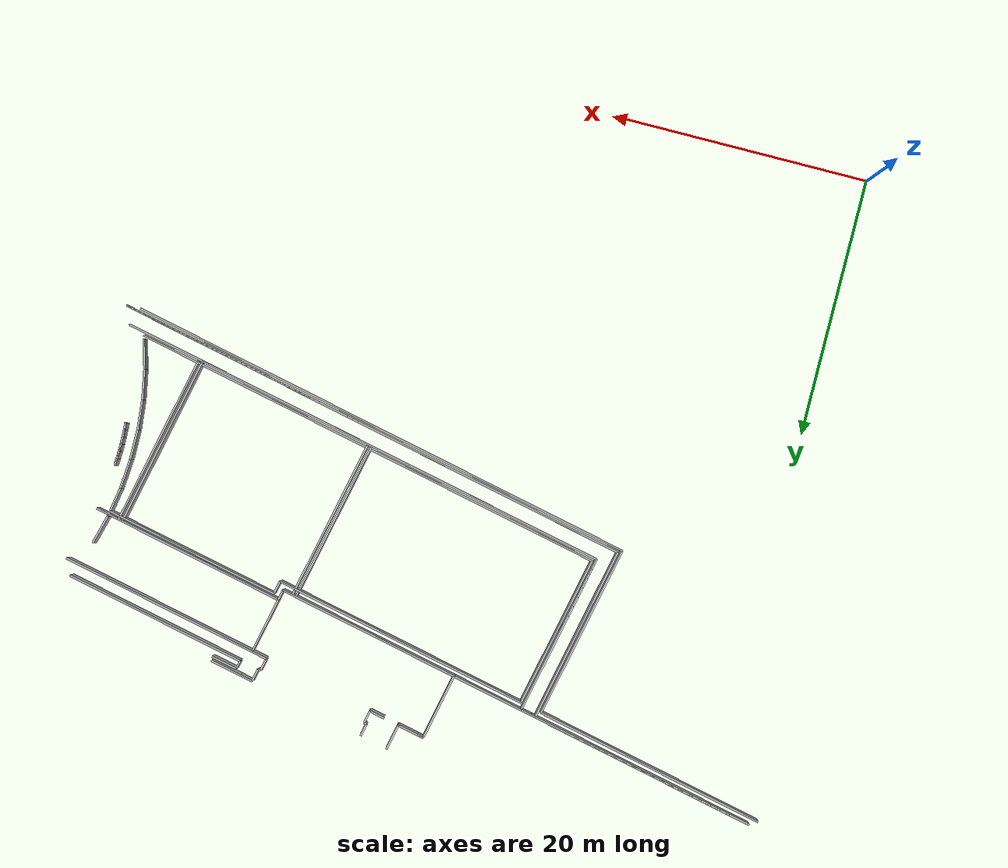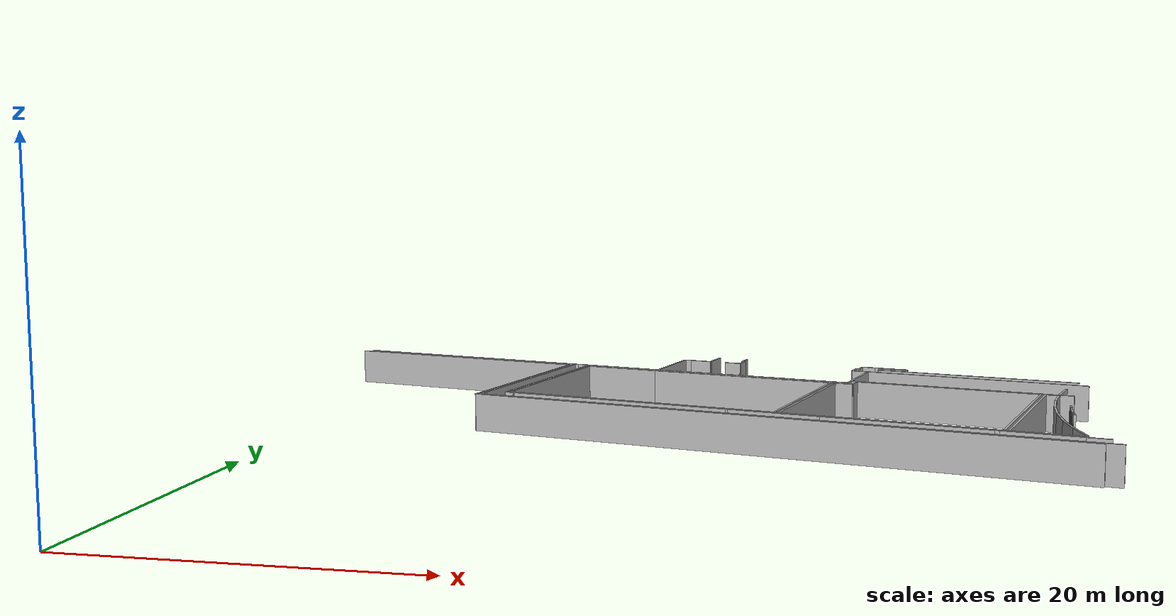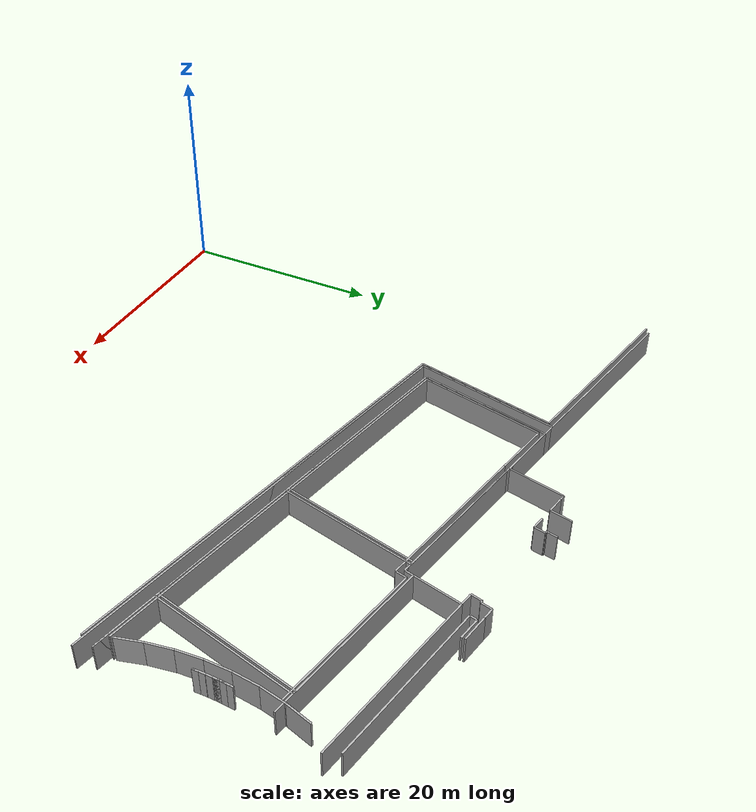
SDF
<?xml version="1.0" ?>
<sdf version="1.6">
  <model name="sps_2204">
    <pose frame="">0 0 0 0 -0 0</pose>
    <static>1</static>
    <self_collide>0</self_collide>
    <allow_auto_disable>0</allow_auto_disable>
    <link name="Wall214">
      <kinematic>0</kinematic>
      <gravity>1</gravity>
      <self_collide>0</self_collide>
      <collision name="collision">
        <geometry>
          <box>
            <size>1.20023 0.15 2.5</size>
          </box>
        </geometry>
        <pose frame="">0 0 0 0 -0 0</pose>
      </collision>
      <visual name="visual">
        <geometry>
          <box>
            <size>1.20023 0.15 2.5</size>
          </box>
        </geometry>
        <pose frame="">0 0 0 0 -0 0</pose>
        <cast_shadows>1</cast_shadows>
        <transparency>0.0</transparency>
      </visual>
      <pose frame="">26.0478 48.5725 1.25 0 -0 2.92734</pose>
    </link>
    <link name="Wall218">
      <kinematic>0</kinematic>
      <gravity>1</gravity>
      <self_collide>0</self_collide>
      <collision name="collision">
        <geometry>
          <box>
            <size>0.999999 0.15 2.5</size>
          </box>
        </geometry>
        <pose frame="">0 0 0 0 -0 0</pose>
      </collision>
      <visual name="visual">
        <geometry>
          <box>
            <size>0.999999 0.15 2.5</size>
          </box>
        </geometry>
        <pose frame="">0 0 0 0 -0 0</pose>
        <cast_shadows>1</cast_shadows>
        <transparency>0.0</transparency>
      </visual>
      <pose frame="">35.3382 47.0623 1.25 0 -0 1.35701</pose>
    </link>
    <link name="Wall219">
      <kinematic>0</kinematic>
      <gravity>1</gravity>
      <self_collide>0</self_collide>
      <collision name="collision">
        <geometry>
          <box>
            <size>0.9999 0.15 2.5</size>
          </box>
        </geometry>
        <pose frame="">0 0 0 0 -0 0</pose>
      </collision>
      <visual name="visual">
        <geometry>
          <box>
            <size>0.9999 0.15 2.5</size>
          </box>
        </geometry>
        <pose frame="">0 0 0 0 -0 0</pose>
        <cast_shadows>1</cast_shadows>
        <transparency>0.0</transparency>
      </visual>
      <pose frame="">35.7465 47.9971 1.25 0 -0 1.35718</pose>
    </link>
    <link name="Wall220">
      <kinematic>0</kinematic>
      <gravity>1</gravity>
      <self_collide>0</self_collide>
      <collision name="collision">
        <geometry>
          <box>
            <size>0.99996 0.15 2.5</size>
          </box>
        </geometry>
        <pose frame="">0 0 0 0 -0 0</pose>
      </collision>
      <visual name="visual">
        <geometry>
          <box>
            <size>0.99996 0.15 2.5</size>
          </box>
        </geometry>
        <pose frame="">0 0 0 0 -0 0</pose>
        <cast_shadows>1</cast_shadows>
        <transparency>0.0</transparency>
      </visual>
      <pose frame="">36.3411 48.3797 1.25 0 0 -0.213604</pose>
    </link>
    <link name="Wall221">
      <kinematic>0</kinematic>
      <gravity>1</gravity>
      <self_collide>0</self_collide>
      <collision name="collision">
        <geometry>
          <box>
            <size>16.7002 0.15 2.5</size>
          </box>
        </geometry>
        <pose frame="">0 0 0 0 -0 0</pose>
      </collision>
      <visual name="visual">
        <geometry>
          <box>
            <size>16.7002 0.15 2.5</size>
          </box>
        </geometry>
        <pose frame="">0 0 0 0 -0 0</pose>
        <cast_shadows>1</cast_shadows>
        <transparency>0.0</transparency>
      </visual>
      <pose frame="">36.8682 27.8488 1.25 0 0 -0.214071</pose>
    </link>
    <link name="Wall222">
      <kinematic>0</kinematic>
      <gravity>1</gravity>
      <self_collide>0</self_collide>
      <collision name="collision">
        <geometry>
          <box>
            <size>41.6744 0.15 2.5</size>
          </box>
        </geometry>
        <pose frame="">0 0 0 0 -0 0</pose>
      </collision>
      <visual name="visual">
        <geometry>
          <box>
            <size>41.6744 0.15 2.5</size>
          </box>
        </geometry>
        <pose frame="">0 0 0 0 -0 0</pose>
        <cast_shadows>1</cast_shadows>
        <transparency>0.0</transparency>
      </visual>
      <pose frame="">31.8077 27.7209 1.25 0 0 -0.214069</pose>
    </link>
    <link name="Wall529">
      <kinematic>0</kinematic>
      <gravity>1</gravity>
      <self_collide>0</self_collide>
      <collision name="collision">
        <geometry>
          <box>
            <size>18.1208 0.15 2.5</size>
          </box>
        </geometry>
        <pose frame="">0 0 0 0 -0 0</pose>
      </collision>
      <visual name="visual">
        <geometry>
          <box>
            <size>18.1208 0.15 2.5</size>
          </box>
        </geometry>
        <pose frame="">0 0 0 0 -0 0</pose>
        <cast_shadows>1</cast_shadows>
        <transparency>0.0</transparency>
      </visual>
      <pose frame="">5.55904 47.7055 1.25 0 -0 2.92734</pose>
    </link>
    <link name="Wall531">
      <kinematic>0</kinematic>
      <gravity>1</gravity>
      <self_collide>0</self_collide>
      <collision name="collision">
        <geometry>
          <box>
            <size>0.200761 0.15 2.5</size>
          </box>
        </geometry>
        <pose frame="">0 0 0 0 -0 0</pose>
      </collision>
      <visual name="visual">
        <geometry>
          <box>
            <size>0.200761 0.15 2.5</size>
          </box>
        </geometry>
        <pose frame="">0 0 0 0 -0 0</pose>
        <cast_shadows>1</cast_shadows>
        <transparency>0.0</transparency>
      </visual>
      <pose frame="">35.5424 47.5297 1.25 0 0 -0.212898</pose>
    </link>
    <link name="Wall532">
      <kinematic>0</kinematic>
      <gravity>1</gravity>
      <self_collide>0</self_collide>
      <collision name="collision">
        <geometry>
          <box>
            <size>13.8832 0.15 2.5</size>
          </box>
        </geometry>
        <pose frame="">0 0 0 0 -0 0</pose>
      </collision>
      <visual name="visual">
        <geometry>
          <box>
            <size>13.8832 0.15 2.5</size>
          </box>
        </geometry>
        <pose frame="">0 0 0 0 -0 0</pose>
        <cast_shadows>1</cast_shadows>
        <transparency>0.0</transparency>
      </visual>
      <pose frame="">42.6867 40.1925 1.25 0 -0 2.92736</pose>
    </link>
    <link name="Wall806">
      <kinematic>0</kinematic>
      <gravity>1</gravity>
      <self_collide>0</self_collide>
      <collision name="collision">
        <geometry>
          <box>
            <size>18.371 0.15 2.5</size>
          </box>
        </geometry>
        <pose frame="">0 0 0 0 -0 0</pose>
      </collision>
      <visual name="visual">
        <geometry>
          <box>
            <size>18.371 0.15 2.5</size>
          </box>
        </geometry>
        <pose frame="">0 0 0 0 -0 0</pose>
        <cast_shadows>1</cast_shadows>
        <transparency>0.0</transparency>
      </visual>
      <pose frame="">5.08617 47.2969 1.25 0 -0 2.92734</pose>
    </link>
    <link name="Wall807">
      <kinematic>0</kinematic>
      <gravity>1</gravity>
      <self_collide>0</self_collide>
      <collision name="collision">
        <geometry>
          <box>
            <size>13.9506 0.15 2.5</size>
          </box>
        </geometry>
        <pose frame="">0 0 0 0 -0 0</pose>
      </collision>
      <visual name="visual">
        <geometry>
          <box>
            <size>13.9506 0.15 2.5</size>
          </box>
        </geometry>
        <pose frame="">0 0 0 0 -0 0</pose>
        <cast_shadows>1</cast_shadows>
        <transparency>0.0</transparency>
      </visual>
      <pose frame="">12.9292 38.9633 1.25 0 -0 1.35654</pose>
    </link>
    <link name="Wall808">
      <kinematic>0</kinematic>
      <gravity>1</gravity>
      <self_collide>0</self_collide>
      <collision name="collision">
        <geometry>
          <box>
            <size>12.0006 0.15 2.5</size>
          </box>
        </geometry>
        <pose frame="">0 0 0 0 -0 0</pose>
      </collision>
      <visual name="visual">
        <geometry>
          <box>
            <size>12.0006 0.15 2.5</size>
          </box>
        </geometry>
        <pose frame="">0 0 0 0 -0 0</pose>
        <cast_shadows>1</cast_shadows>
        <transparency>0.0</transparency>
      </visual>
      <pose frame="">14.447 39.1194 1.25 0 -0 1.35654</pose>
    </link>
    <link name="Wall813">
      <kinematic>0</kinematic>
      <gravity>1</gravity>
      <self_collide>0</self_collide>
      <collision name="collision">
        <geometry>
          <box>
            <size>15.9048 0.15 2.5</size>
          </box>
        </geometry>
        <pose frame="">0 0 0 0 -0 0</pose>
      </collision>
      <visual name="visual">
        <geometry>
          <box>
            <size>15.9048 0.15 2.5</size>
          </box>
        </geometry>
        <pose frame="">0 0 0 0 -0 0</pose>
        <cast_shadows>1</cast_shadows>
        <transparency>0.0</transparency>
      </visual>
      <pose frame="">20.6448 31.3757 1.25 0 0 -0.214069</pose>
    </link>
    <link name="Wall814">
      <kinematic>0</kinematic>
      <gravity>1</gravity>
      <self_collide>0</self_collide>
      <collision name="collision">
        <geometry>
          <box>
            <size>14.9974 0.15 2.5</size>
          </box>
        </geometry>
        <pose frame="">0 0 0 0 -0 0</pose>
      </collision>
      <visual name="visual">
        <geometry>
          <box>
            <size>14.9974 0.15 2.5</size>
          </box>
        </geometry>
        <pose frame="">0 0 0 0 -0 0</pose>
        <cast_shadows>1</cast_shadows>
        <transparency>0.0</transparency>
      </visual>
      <pose frame="">28.3537 42.2361 1.25 0 -0 2.92744</pose>
    </link>
    <link name="Wall815">
      <kinematic>0</kinematic>
      <gravity>1</gravity>
      <self_collide>0</self_collide>
      <collision name="collision">
        <geometry>
          <box>
            <size>38.0495 0.15 2.5</size>
          </box>
        </geometry>
        <pose frame="">0 0 0 0 -0 0</pose>
      </collision>
      <visual name="visual">
        <geometry>
          <box>
            <size>38.0495 0.15 2.5</size>
          </box>
        </geometry>
        <pose frame="">0 0 0 0 -0 0</pose>
        <cast_shadows>1</cast_shadows>
        <transparency>0.0</transparency>
      </visual>
      <pose frame="">31.7617 29.2147 1.25 0 0 -0.21407</pose>
    </link>
    <link name="Wall1135">
      <kinematic>0</kinematic>
      <gravity>1</gravity>
      <self_collide>0</self_collide>
      <collision name="collision">
        <geometry>
          <box>
            <size>13.7007 0.15 2.5</size>
          </box>
        </geometry>
        <pose frame="">0 0 0 0 -0 0</pose>
      </collision>
      <visual name="visual">
        <geometry>
          <box>
            <size>13.7007 0.15 2.5</size>
          </box>
        </geometry>
        <pose frame="">0 0 0 0 -0 0</pose>
        <cast_shadows>1</cast_shadows>
        <transparency>0.0</transparency>
      </visual>
      <pose frame="">12.6052 38.6502 1.25 0 -0 1.35654</pose>
    </link>
    <link name="Wall1138">
      <kinematic>0</kinematic>
      <gravity>1</gravity>
      <self_collide>0</self_collide>
      <collision name="collision">
        <geometry>
          <box>
            <size>0.495744 0.15 2.5</size>
          </box>
        </geometry>
        <pose frame="">0 0 0 0 -0 0</pose>
      </collision>
      <visual name="visual">
        <geometry>
          <box>
            <size>0.495744 0.15 2.5</size>
          </box>
        </geometry>
        <pose frame="">0 0 0 0 -0 0</pose>
        <cast_shadows>1</cast_shadows>
        <transparency>0.0</transparency>
      </visual>
      <pose frame="">21.3769 44.2657 1.25 0 0 -0.206329</pose>
    </link>
    <link name="Wall1140">
      <kinematic>0</kinematic>
      <gravity>1</gravity>
      <self_collide>0</self_collide>
      <collision name="collision">
        <geometry>
          <box>
            <size>1.60013 0.15 2.5</size>
          </box>
        </geometry>
        <pose frame="">0 0 0 0 -0 0</pose>
      </collision>
      <visual name="visual">
        <geometry>
          <box>
            <size>1.60013 0.15 2.5</size>
          </box>
        </geometry>
        <pose frame="">0 0 0 0 -0 0</pose>
        <cast_shadows>1</cast_shadows>
        <transparency>0.0</transparency>
      </visual>
      <pose frame="">23.5069 49.1257 1.25 0 0 -0.214639</pose>
    </link>
    <link name="Wall1141">
      <kinematic>0</kinematic>
      <gravity>1</gravity>
      <self_collide>0</self_collide>
      <collision name="collision">
        <geometry>
          <box>
            <size>2.00039 0.15 2.5</size>
          </box>
        </geometry>
        <pose frame="">0 0 0 0 -0 0</pose>
      </collision>
      <visual name="visual">
        <geometry>
          <box>
            <size>2.00039 0.15 2.5</size>
          </box>
        </geometry>
        <pose frame="">0 0 0 0 -0 0</pose>
        <cast_shadows>1</cast_shadows>
        <transparency>0.0</transparency>
      </visual>
      <pose frame="">24.5015 49.9326 1.25 0 -0 1.3564</pose>
    </link>
    <link name="Wall1144">
      <kinematic>0</kinematic>
      <gravity>1</gravity>
      <self_collide>0</self_collide>
      <collision name="collision">
        <geometry>
          <box>
            <size>0.299792 0.15 2.5</size>
          </box>
        </geometry>
        <pose frame="">0 0 0 0 -0 0</pose>
      </collision>
      <visual name="visual">
        <geometry>
          <box>
            <size>0.299792 0.15 2.5</size>
          </box>
        </geometry>
        <pose frame="">0 0 0 0 -0 0</pose>
        <cast_shadows>1</cast_shadows>
        <transparency>0.0</transparency>
      </visual>
      <pose frame="">28.5622 29.6545 1.25 0 0 -0.213767</pose>
    </link>
    <link name="Wall1145">
      <kinematic>0</kinematic>
      <gravity>1</gravity>
      <self_collide>0</self_collide>
      <collision name="collision">
        <geometry>
          <box>
            <size>0.800156 0.15 2.5</size>
          </box>
        </geometry>
        <pose frame="">0 0 0 0 -0 0</pose>
      </collision>
      <visual name="visual">
        <geometry>
          <box>
            <size>0.800156 0.15 2.5</size>
          </box>
        </geometry>
        <pose frame="">0 0 0 0 -0 0</pose>
        <cast_shadows>1</cast_shadows>
        <transparency>0.0</transparency>
      </visual>
      <pose frame="">35.3834 41.6288 1.25 0 0 -1.78541</pose>
    </link>
    <link name="Wall1146">
      <kinematic>0</kinematic>
      <gravity>1</gravity>
      <self_collide>0</self_collide>
      <collision name="collision">
        <geometry>
          <box>
            <size>13.5967 0.15 2.5</size>
          </box>
        </geometry>
        <pose frame="">0 0 0 0 -0 0</pose>
      </collision>
      <visual name="visual">
        <geometry>
          <box>
            <size>13.5967 0.15 2.5</size>
          </box>
        </geometry>
        <pose frame="">0 0 0 0 -0 0</pose>
        <cast_shadows>1</cast_shadows>
        <transparency>0.0</transparency>
      </visual>
      <pose frame="">46.9649 32.6058 1.25 0 0 -1.78507</pose>
    </link>
    <link name="Wall1415">
      <kinematic>0</kinematic>
      <gravity>1</gravity>
      <self_collide>0</self_collide>
      <collision name="collision">
        <geometry>
          <box>
            <size>12.7506 0.15 2.5</size>
          </box>
        </geometry>
        <pose frame="">0 0 0 0 -0 0</pose>
      </collision>
      <visual name="visual">
        <geometry>
          <box>
            <size>12.7506 0.15 2.5</size>
          </box>
        </geometry>
        <pose frame="">0 0 0 0 -0 0</pose>
        <cast_shadows>1</cast_shadows>
        <transparency>0.0</transparency>
      </visual>
      <pose frame="">14.2294 39.2946 1.25 0 -0 1.35654</pose>
    </link>
    <link name="Wall1417">
      <kinematic>0</kinematic>
      <gravity>1</gravity>
      <self_collide>0</self_collide>
      <collision name="collision">
        <geometry>
          <box>
            <size>5.42726 0.15 2.5</size>
          </box>
        </geometry>
        <pose frame="">0 0 0 0 -0 0</pose>
      </collision>
      <visual name="visual">
        <geometry>
          <box>
            <size>5.42726 0.15 2.5</size>
          </box>
        </geometry>
        <pose frame="">0 0 0 0 -0 0</pose>
        <cast_shadows>1</cast_shadows>
        <transparency>0.0</transparency>
      </visual>
      <pose frame="">18.3746 44.4061 1.25 0 -0 2.92755</pose>
    </link>
    <link name="Wall1424">
      <kinematic>0</kinematic>
      <gravity>1</gravity>
      <self_collide>0</self_collide>
      <collision name="collision">
        <geometry>
          <box>
            <size>1.04973 0.15 2.5</size>
          </box>
        </geometry>
        <pose frame="">0 0 0 0 -0 0</pose>
      </collision>
      <visual name="visual">
        <geometry>
          <box>
            <size>1.04973 0.15 2.5</size>
          </box>
        </geometry>
        <pose frame="">0 0 0 0 -0 0</pose>
        <cast_shadows>1</cast_shadows>
        <transparency>0.0</transparency>
      </visual>
      <pose frame="">35.7924 41.1554 1.25 0 0 -1.78465</pose>
    </link>
    <link name="Wall1426">
      <kinematic>0</kinematic>
      <gravity>1</gravity>
      <self_collide>0</self_collide>
      <collision name="collision">
        <geometry>
          <box>
            <size>6.43258 0.15 2.5</size>
          </box>
        </geometry>
        <pose frame="">0 0 0 0 -0 0</pose>
      </collision>
      <visual name="visual">
        <geometry>
          <box>
            <size>6.43258 0.15 2.5</size>
          </box>
        </geometry>
        <pose frame="">0 0 0 0 -0 0</pose>
        <cast_shadows>1</cast_shadows>
        <transparency>0.0</transparency>
      </visual>
      <pose frame="">48.464 25.3279 1.25 0 0 -0.214058</pose>
    </link>
    <link name="Wall1427">
      <kinematic>0</kinematic>
      <gravity>1</gravity>
      <self_collide>0</self_collide>
      <collision name="collision">
        <geometry>
          <box>
            <size>15.7438 0.15 2.5</size>
          </box>
        </geometry>
        <pose frame="">0 0 0 0 -0 0</pose>
      </collision>
      <visual name="visual">
        <geometry>
          <box>
            <size>15.7438 0.15 2.5</size>
          </box>
        </geometry>
        <pose frame="">0 0 0 0 -0 0</pose>
        <cast_shadows>1</cast_shadows>
        <transparency>0.0</transparency>
      </visual>
      <pose frame="">44.0968 44.6448 1.25 0 0 -0.214254</pose>
    </link>
    <link name="Wall1729">
      <kinematic>0</kinematic>
      <gravity>1</gravity>
      <self_collide>0</self_collide>
      <collision name="collision">
        <geometry>
          <box>
            <size>0.495922 0.15 2.5</size>
          </box>
        </geometry>
        <pose frame="">0 0 0 0 -0 0</pose>
      </collision>
      <visual name="visual">
        <geometry>
          <box>
            <size>0.495922 0.15 2.5</size>
          </box>
        </geometry>
        <pose frame="">0 0 0 0 -0 0</pose>
        <cast_shadows>1</cast_shadows>
        <transparency>0.0</transparency>
      </visual>
      <pose frame="">22.4827 49.3479 1.25 0 -0 2.93119</pose>
    </link>
    <link name="Wall1734">
      <kinematic>0</kinematic>
      <gravity>1</gravity>
      <self_collide>0</self_collide>
      <collision name="collision">
        <geometry>
          <box>
            <size>0.199428 0.15 2.5</size>
          </box>
        </geometry>
        <pose frame="">0 0 0 0 -0 0</pose>
      </collision>
      <visual name="visual">
        <geometry>
          <box>
            <size>0.199428 0.15 2.5</size>
          </box>
        </geometry>
        <pose frame="">0 0 0 0 -0 0</pose>
        <cast_shadows>1</cast_shadows>
        <transparency>0.0</transparency>
      </visual>
      <pose frame="">26.749 49.4432 1.25 0 0 -0.215283</pose>
    </link>
    <link name="Wall1739">
      <kinematic>0</kinematic>
      <gravity>1</gravity>
      <self_collide>0</self_collide>
      <collision name="collision">
        <geometry>
          <box>
            <size>0.300249 0.15 2.5</size>
          </box>
        </geometry>
        <pose frame="">0 0 0 0 -0 0</pose>
      </collision>
      <visual name="visual">
        <geometry>
          <box>
            <size>0.300249 0.15 2.5</size>
          </box>
        </geometry>
        <pose frame="">0 0 0 0 -0 0</pose>
        <cast_shadows>1</cast_shadows>
        <transparency>0.0</transparency>
      </visual>
      <pose frame="">45.1744 26.043 1.25 0 0 -0.214061</pose>
    </link>
    <link name="Wall1740">
      <kinematic>0</kinematic>
      <gravity>1</gravity>
      <self_collide>0</self_collide>
      <collision name="collision">
        <geometry>
          <box>
            <size>15.3806 0.15 2.5</size>
          </box>
        </geometry>
        <pose frame="">0 0 0 0 -0 0</pose>
      </collision>
      <visual name="visual">
        <geometry>
          <box>
            <size>15.3806 0.15 2.5</size>
          </box>
        </geometry>
        <pose frame="">0 0 0 0 -0 0</pose>
        <cast_shadows>1</cast_shadows>
        <transparency>0.0</transparency>
      </visual>
      <pose frame="">42.9831 40.3843 1.25 0 -0 2.9273</pose>
    </link>
    <link name="Wall2036">
      <kinematic>0</kinematic>
      <gravity>1</gravity>
      <self_collide>0</self_collide>
      <collision name="collision">
        <geometry>
          <box>
            <size>5.67926 0.15 2.5</size>
          </box>
        </geometry>
        <pose frame="">0 0 0 0 -0 0</pose>
      </collision>
      <visual name="visual">
        <geometry>
          <box>
            <size>5.67926 0.15 2.5</size>
          </box>
        </geometry>
        <pose frame="">0 0 0 0 -0 0</pose>
        <cast_shadows>1</cast_shadows>
        <transparency>0.0</transparency>
      </visual>
      <pose frame="">18.3595 44.9203 1.25 0 -0 2.92732</pose>
    </link>
    <link name="Wall2039">
      <kinematic>0</kinematic>
      <gravity>1</gravity>
      <self_collide>0</self_collide>
      <collision name="collision">
        <geometry>
          <box>
            <size>0.999913 0.15 2.5</size>
          </box>
        </geometry>
        <pose frame="">0 0 0 0 -0 0</pose>
      </collision>
      <visual name="visual">
        <geometry>
          <box>
            <size>0.999913 0.15 2.5</size>
          </box>
        </geometry>
        <pose frame="">0 0 0 0 -0 0</pose>
        <cast_shadows>1</cast_shadows>
        <transparency>0.0</transparency>
      </visual>
      <pose frame="">26.7577 49.9531 1.25 0 0 -1.78447</pose>
    </link>
    <link name="Wall2040">
      <kinematic>0</kinematic>
      <gravity>1</gravity>
      <self_collide>0</self_collide>
      <collision name="collision">
        <geometry>
          <box>
            <size>12.7768 0.15 2.5</size>
          </box>
        </geometry>
        <pose frame="">0 0 0 0 -0 0</pose>
      </collision>
      <visual name="visual">
        <geometry>
          <box>
            <size>12.7768 0.15 2.5</size>
          </box>
        </geometry>
        <pose frame="">0 0 0 0 -0 0</pose>
        <cast_shadows>1</cast_shadows>
        <transparency>0.0</transparency>
      </visual>
      <pose frame="">32.8762 35.2522 1.25 0 0 -1.78507</pose>
    </link>
    <link name="Wall2041">
      <kinematic>0</kinematic>
      <gravity>1</gravity>
      <self_collide>0</self_collide>
      <collision name="collision">
        <geometry>
          <box>
            <size>12.7767 0.15 2.5</size>
          </box>
        </geometry>
        <pose frame="">0 0 0 0 -0 0</pose>
      </collision>
      <visual name="visual">
        <geometry>
          <box>
            <size>12.7767 0.15 2.5</size>
          </box>
        </geometry>
        <pose frame="">0 0 0 0 -0 0</pose>
        <cast_shadows>1</cast_shadows>
        <transparency>0.0</transparency>
      </visual>
      <pose frame="">33.1694 35.1884 1.25 0 0 -1.78505</pose>
    </link>
    <link name="Wall2042">
      <kinematic>0</kinematic>
      <gravity>1</gravity>
      <self_collide>0</self_collide>
      <collision name="collision">
        <geometry>
          <box>
            <size>1.20023 0.15 2.5</size>
          </box>
        </geometry>
        <pose frame="">0 0 0 0 -0 0</pose>
      </collision>
      <visual name="visual">
        <geometry>
          <box>
            <size>1.20023 0.15 2.5</size>
          </box>
        </geometry>
        <pose frame="">0 0 0 0 -0 0</pose>
        <cast_shadows>1</cast_shadows>
        <transparency>0.0</transparency>
      </visual>
      <pose frame="">35.8185 46.4461 1.25 0 -0 2.92734</pose>
    </link>
    <link name="Wall2043">
      <kinematic>0</kinematic>
      <gravity>1</gravity>
      <self_collide>0</self_collide>
      <collision name="collision">
        <geometry>
          <box>
            <size>0.651652 0.15 2.5</size>
          </box>
        </geometry>
        <pose frame="">0 0 0 0 -0 0</pose>
      </collision>
      <visual name="visual">
        <geometry>
          <box>
            <size>0.651652 0.15 2.5</size>
          </box>
        </geometry>
        <pose frame="">0 0 0 0 -0 0</pose>
        <cast_shadows>1</cast_shadows>
        <transparency>0.0</transparency>
      </visual>
      <pose frame="">37.1854 47.5561 1.25 0 -0 1.35674</pose>
    </link>
    <link name="Wall2045">
      <kinematic>0</kinematic>
      <gravity>1</gravity>
      <self_collide>0</self_collide>
      <collision name="collision">
        <geometry>
          <box>
            <size>2.04037 0.15 2.5</size>
          </box>
        </geometry>
        <pose frame="">0 0 0 0 -0 0</pose>
      </collision>
      <visual name="visual">
        <geometry>
          <box>
            <size>2.04037 0.15 2.5</size>
          </box>
        </geometry>
        <pose frame="">0 0 0 0 -0 0</pose>
        <cast_shadows>1</cast_shadows>
        <transparency>0.0</transparency>
      </visual>
      <pose frame="">38.2515 47.6573 1.25 0 0 -0.214539</pose>
    </link>
    <link name="Wall2046">
      <kinematic>0</kinematic>
      <gravity>1</gravity>
      <self_collide>0</self_collide>
      <collision name="collision">
        <geometry>
          <box>
            <size>40.8693 0.15 2.5</size>
          </box>
        </geometry>
        <pose frame="">0 0 0 0 -0 0</pose>
      </collision>
      <visual name="visual">
        <geometry>
          <box>
            <size>40.8693 0.15 2.5</size>
          </box>
        </geometry>
        <pose frame="">0 0 0 0 -0 0</pose>
        <cast_shadows>1</cast_shadows>
        <transparency>0.0</transparency>
      </visual>
      <pose frame="">31.1168 27.6153 1.25 0 0 -0.214074</pose>
    </link>
    <link name="Wall2366">
      <kinematic>0</kinematic>
      <gravity>1</gravity>
      <self_collide>0</self_collide>
      <collision name="collision">
        <geometry>
          <box>
            <size>0.999773 0.15 2.5</size>
          </box>
        </geometry>
        <pose frame="">0 0 0 0 -0 0</pose>
      </collision>
      <visual name="visual">
        <geometry>
          <box>
            <size>0.999773 0.15 2.5</size>
          </box>
        </geometry>
        <pose frame="">0 0 0 0 -0 0</pose>
        <cast_shadows>1</cast_shadows>
        <transparency>0.0</transparency>
      </visual>
      <pose frame="">26.7403 48.9334 1.25 0 0 -1.78469</pose>
    </link>
    <link name="Wall2369">
      <kinematic>0</kinematic>
      <gravity>1</gravity>
      <self_collide>0</self_collide>
      <collision name="collision">
        <geometry>
          <box>
            <size>13.999 0.15 2.5</size>
          </box>
        </geometry>
        <pose frame="">0 0 0 0 -0 0</pose>
      </collision>
      <visual name="visual">
        <geometry>
          <box>
            <size>13.999 0.15 2.5</size>
          </box>
        </geometry>
        <pose frame="">0 0 0 0 -0 0</pose>
        <cast_shadows>1</cast_shadows>
        <transparency>0.0</transparency>
      </visual>
      <pose frame="">28.4589 42.7264 1.25 0 -0 2.92729</pose>
    </link>
    <link name="Wall2371">
      <kinematic>0</kinematic>
      <gravity>1</gravity>
      <self_collide>0</self_collide>
      <collision name="collision">
        <geometry>
          <box>
            <size>2.46027 0.15 2.5</size>
          </box>
        </geometry>
        <pose frame="">0 0 0 0 -0 0</pose>
      </collision>
      <visual name="visual">
        <geometry>
          <box>
            <size>2.46027 0.15 2.5</size>
          </box>
        </geometry>
        <pose frame="">0 0 0 0 -0 0</pose>
        <cast_shadows>1</cast_shadows>
        <transparency>0.0</transparency>
      </visual>
      <pose frame="">38.0317 48.0121 1.25 0 -0 2.9273</pose>
    </link>
    <link name="Wall2372">
      <kinematic>0</kinematic>
      <gravity>1</gravity>
      <self_collide>0</self_collide>
      <collision name="collision">
        <geometry>
          <box>
            <size>13.5964 0.15 2.5</size>
          </box>
        </geometry>
        <pose frame="">0 0 0 0 -0 0</pose>
      </collision>
      <visual name="visual">
        <geometry>
          <box>
            <size>13.5964 0.15 2.5</size>
          </box>
        </geometry>
        <pose frame="">0 0 0 0 -0 0</pose>
        <cast_shadows>1</cast_shadows>
        <transparency>0.0</transparency>
      </visual>
      <pose frame="">47.258 32.542 1.25 0 0 -1.78509</pose>
    </link>
    <link name="Wall2373">
      <kinematic>0</kinematic>
      <gravity>1</gravity>
      <self_collide>0</self_collide>
      <collision name="collision">
        <geometry>
          <box>
            <size>14.4263 0.15 2.5</size>
          </box>
        </geometry>
        <pose frame="">0 0 0 0 -0 0</pose>
      </collision>
      <visual name="visual">
        <geometry>
          <box>
            <size>14.4263 0.15 2.5</size>
          </box>
        </geometry>
        <pose frame="">0 0 0 0 -0 0</pose>
        <cast_shadows>1</cast_shadows>
        <transparency>0.0</transparency>
      </visual>
      <pose frame="">44.1645 45.7041 1.25 0 -0 2.92735</pose>
    </link>
    <link name="Wall5970">
      <kinematic>0</kinematic>
      <gravity>1</gravity>
      <self_collide>0</self_collide>
      <collision name="collision">
        <geometry>
          <box>
            <size>2.46027 0.15 2.5</size>
          </box>
        </geometry>
        <pose frame="">0 0 0 0 -0 0</pose>
      </collision>
      <visual name="visual">
        <geometry>
          <box>
            <size>2.46027 0.15 2.5</size>
          </box>
        </geometry>
        <pose frame="">0 0 0 0 -0 0</pose>
        <cast_shadows>1</cast_shadows>
        <transparency>0.0</transparency>
      </visual>
      <pose frame="">38.0317 48.0121 1.25 0 -0 2.9273</pose>
    </link>
    <link name="Wall7852">
      <kinematic>0</kinematic>
      <gravity>1</gravity>
      <self_collide>0</self_collide>
      <collision name="collision">
        <geometry>
          <box>
            <size>0.564495 0.15 2.5</size>
          </box>
        </geometry>
        <pose frame="">0 0 0 0 -0 0</pose>
      </collision>
      <visual name="visual">
        <geometry>
          <box>
            <size>0.564495 0.15 2.5</size>
          </box>
        </geometry>
        <pose frame="">0 0 0 0 -0 0</pose>
        <cast_shadows>1</cast_shadows>
        <transparency>0.0</transparency>
      </visual>
      <pose frame="">49.9977 32.1711 1.25 0 -0 1.62716</pose>
    </link>
    <link name="Wall7853">
      <kinematic>0</kinematic>
      <gravity>1</gravity>
      <self_collide>0</self_collide>
      <collision name="collision">
        <geometry>
          <box>
            <size>0.564345 0.15 2.5</size>
          </box>
        </geometry>
        <pose frame="">0 0 0 0 -0 0</pose>
      </collision>
      <visual name="visual">
        <geometry>
          <box>
            <size>0.564345 0.15 2.5</size>
          </box>
        </geometry>
        <pose frame="">0 0 0 0 -0 0</pose>
        <cast_shadows>1</cast_shadows>
        <transparency>0.0</transparency>
      </visual>
      <pose frame="">49.9723 32.7349 1.25 0 -0 1.60444</pose>
    </link>
    <link name="Wall7854">
      <kinematic>0</kinematic>
      <gravity>1</gravity>
      <self_collide>0</self_collide>
      <collision name="collision">
        <geometry>
          <box>
            <size>0.564426 0.15 2.5</size>
          </box>
        </geometry>
        <pose frame="">0 0 0 0 -0 0</pose>
      </collision>
      <visual name="visual">
        <geometry>
          <box>
            <size>0.564426 0.15 2.5</size>
          </box>
        </geometry>
        <pose frame="">0 0 0 0 -0 0</pose>
        <cast_shadows>1</cast_shadows>
        <transparency>0.0</transparency>
      </visual>
      <pose frame="">49.9597 33.2991 1.25 0 -0 1.58183</pose>
    </link>
    <link name="Wall7855">
      <kinematic>0</kinematic>
      <gravity>1</gravity>
      <self_collide>0</self_collide>
      <collision name="collision">
        <geometry>
          <box>
            <size>0.564612 0.15 2.5</size>
          </box>
        </geometry>
        <pose frame="">0 0 0 0 -0 0</pose>
      </collision>
      <visual name="visual">
        <geometry>
          <box>
            <size>0.564612 0.15 2.5</size>
          </box>
        </geometry>
        <pose frame="">0 0 0 0 -0 0</pose>
        <cast_shadows>1</cast_shadows>
        <transparency>0.0</transparency>
      </visual>
      <pose frame="">49.9598 33.8636 1.25 0 -0 1.55945</pose>
    </link>
    <link name="Wall7856">
      <kinematic>0</kinematic>
      <gravity>1</gravity>
      <self_collide>0</self_collide>
      <collision name="collision">
        <geometry>
          <box>
            <size>0.56436 0.15 2.5</size>
          </box>
        </geometry>
        <pose frame="">0 0 0 0 -0 0</pose>
      </collision>
      <visual name="visual">
        <geometry>
          <box>
            <size>0.56436 0.15 2.5</size>
          </box>
        </geometry>
        <pose frame="">0 0 0 0 -0 0</pose>
        <cast_shadows>1</cast_shadows>
        <transparency>0.0</transparency>
      </visual>
      <pose frame="">49.9727 34.4279 1.25 0 -0 1.5364</pose>
    </link>
    <link name="Wall7857">
      <kinematic>0</kinematic>
      <gravity>1</gravity>
      <self_collide>0</self_collide>
      <collision name="collision">
        <geometry>
          <box>
            <size>0.564505 0.15 2.5</size>
          </box>
        </geometry>
        <pose frame="">0 0 0 0 -0 0</pose>
      </collision>
      <visual name="visual">
        <geometry>
          <box>
            <size>0.564505 0.15 2.5</size>
          </box>
        </geometry>
        <pose frame="">0 0 0 0 -0 0</pose>
        <cast_shadows>1</cast_shadows>
        <transparency>0.0</transparency>
      </visual>
      <pose frame="">49.9984 34.9917 1.25 0 -0 1.51411</pose>
    </link>
    <link name="Wall9883">
      <kinematic>0</kinematic>
      <gravity>1</gravity>
      <self_collide>0</self_collide>
      <collision name="collision">
        <geometry>
          <box>
            <size>41.6744 0.15 2.5</size>
          </box>
        </geometry>
        <pose frame="">0 0 0 0 -0 0</pose>
      </collision>
      <visual name="visual">
        <geometry>
          <box>
            <size>41.6744 0.15 2.5</size>
          </box>
        </geometry>
        <pose frame="">0 0 0 0 -0 0</pose>
        <cast_shadows>1</cast_shadows>
        <transparency>0.0</transparency>
      </visual>
      <pose frame="">31.8077 27.7209 1.25 0 -0 2.92752</pose>
    </link>
    <link name="Wall9884">
      <kinematic>0</kinematic>
      <gravity>1</gravity>
      <self_collide>0</self_collide>
      <collision name="collision">
        <geometry>
          <box>
            <size>13.9506 0.15 2.5</size>
          </box>
        </geometry>
        <pose frame="">0 0 0 0 -0 0</pose>
      </collision>
      <visual name="visual">
        <geometry>
          <box>
            <size>13.9506 0.15 2.5</size>
          </box>
        </geometry>
        <pose frame="">0 0 0 0 -0 0</pose>
        <cast_shadows>1</cast_shadows>
        <transparency>0.0</transparency>
      </visual>
      <pose frame="">12.9292 38.9633 1.25 0 -0 1.35654</pose>
    </link>
    <link name="Wall9885">
      <kinematic>0</kinematic>
      <gravity>1</gravity>
      <self_collide>0</self_collide>
      <collision name="collision">
        <geometry>
          <box>
            <size>1.2 0.15 2.5</size>
          </box>
        </geometry>
        <pose frame="">0 0 0 0 -0 0</pose>
      </collision>
      <visual name="visual">
        <geometry>
          <box>
            <size>1.2 0.15 2.5</size>
          </box>
        </geometry>
        <pose frame="">0 0 0 0 -0 0</pose>
        <cast_shadows>1</cast_shadows>
        <transparency>0.0</transparency>
      </visual>
      <pose frame="">14.9986 45.6516 1.25 0 0 -0.214084</pose>
    </link>
    <link name="Wall9886">
      <kinematic>0</kinematic>
      <gravity>1</gravity>
      <self_collide>0</self_collide>
      <collision name="collision">
        <geometry>
          <box>
            <size>12.7506 0.15 2.5</size>
          </box>
        </geometry>
        <pose frame="">0 0 0 0 -0 0</pose>
      </collision>
      <visual name="visual">
        <geometry>
          <box>
            <size>12.7506 0.15 2.5</size>
          </box>
        </geometry>
        <pose frame="">0 0 0 0 -0 0</pose>
        <cast_shadows>1</cast_shadows>
        <transparency>0.0</transparency>
      </visual>
      <pose frame="">14.2294 39.2946 1.25 0 0 -1.78505</pose>
    </link>
    <link name="Wall9887">
      <kinematic>0</kinematic>
      <gravity>1</gravity>
      <self_collide>0</self_collide>
      <collision name="collision">
        <geometry>
          <box>
            <size>39.6377 0.15 2.5</size>
          </box>
        </geometry>
        <pose frame="">0 0 0 0 -0 0</pose>
      </collision>
      <visual name="visual">
        <geometry>
          <box>
            <size>39.6377 0.15 2.5</size>
          </box>
        </geometry>
        <pose frame="">0 0 0 0 -0 0</pose>
        <cast_shadows>1</cast_shadows>
        <transparency>0.0</transparency>
      </visual>
      <pose frame="">32.2403 28.8549 1.25 0 0 -0.214066</pose>
    </link>
    <link name="Wall10472">
      <kinematic>0</kinematic>
      <gravity>1</gravity>
      <self_collide>0</self_collide>
      <collision name="collision">
        <geometry>
          <box>
            <size>14.495 0.15 2.5</size>
          </box>
        </geometry>
        <pose frame="">0 0 0 0 -0 0</pose>
      </collision>
      <visual name="visual">
        <geometry>
          <box>
            <size>14.495 0.15 2.5</size>
          </box>
        </geometry>
        <pose frame="">0 0 0 0 -0 0</pose>
        <cast_shadows>1</cast_shadows>
        <transparency>0.0</transparency>
      </visual>
      <pose frame="">28.2164 42.7772 1.25 0 -0 2.92757</pose>
    </link>
    <link name="Wall10473">
      <kinematic>0</kinematic>
      <gravity>1</gravity>
      <self_collide>0</self_collide>
      <collision name="collision">
        <geometry>
          <box>
            <size>5.20213 0.15 2.5</size>
          </box>
        </geometry>
        <pose frame="">0 0 0 0 -0 0</pose>
      </collision>
      <visual name="visual">
        <geometry>
          <box>
            <size>5.20213 0.15 2.5</size>
          </box>
        </geometry>
        <pose frame="">0 0 0 0 -0 0</pose>
        <cast_shadows>1</cast_shadows>
        <transparency>0.0</transparency>
      </visual>
      <pose frame="">21.6872 46.8581 1.25 0 -0 1.35655</pose>
    </link>
    <link name="Wall10474">
      <kinematic>0</kinematic>
      <gravity>1</gravity>
      <self_collide>0</self_collide>
      <collision name="collision">
        <geometry>
          <box>
            <size>0.495922 0.15 2.5</size>
          </box>
        </geometry>
        <pose frame="">0 0 0 0 -0 0</pose>
      </collision>
      <visual name="visual">
        <geometry>
          <box>
            <size>0.495922 0.15 2.5</size>
          </box>
        </geometry>
        <pose frame="">0 0 0 0 -0 0</pose>
        <cast_shadows>1</cast_shadows>
        <transparency>0.0</transparency>
      </visual>
      <pose frame="">22.4827 49.3479 1.25 0 0 -0.210406</pose>
    </link>
    <link name="Wall13185">
      <kinematic>0</kinematic>
      <gravity>1</gravity>
      <self_collide>0</self_collide>
      <collision name="collision">
        <geometry>
          <box>
            <size>15.3806 0.15 2.5</size>
          </box>
        </geometry>
        <pose frame="">0 0 0 0 -0 0</pose>
      </collision>
      <visual name="visual">
        <geometry>
          <box>
            <size>15.3806 0.15 2.5</size>
          </box>
        </geometry>
        <pose frame="">0 0 0 0 -0 0</pose>
        <cast_shadows>1</cast_shadows>
        <transparency>0.0</transparency>
      </visual>
      <pose frame="">42.9831 40.3843 1.25 0 -0 2.9273</pose>
    </link>
    <link name="Wall13186">
      <kinematic>0</kinematic>
      <gravity>1</gravity>
      <self_collide>0</self_collide>
      <collision name="collision">
        <geometry>
          <box>
            <size>4.39959 0.15 2.5</size>
          </box>
        </geometry>
        <pose frame="">0 0 0 0 -0 0</pose>
      </collision>
      <visual name="visual">
        <geometry>
          <box>
            <size>4.39959 0.15 2.5</size>
          </box>
        </geometry>
        <pose frame="">0 0 0 0 -0 0</pose>
        <cast_shadows>1</cast_shadows>
        <transparency>0.0</transparency>
      </visual>
      <pose frame="">35.9368 44.1691 1.25 0 -0 1.35636</pose>
    </link>
    <link name="Wall13187">
      <kinematic>0</kinematic>
      <gravity>1</gravity>
      <self_collide>0</self_collide>
      <collision name="collision">
        <geometry>
          <box>
            <size>15.7438 0.15 2.5</size>
          </box>
        </geometry>
        <pose frame="">0 0 0 0 -0 0</pose>
      </collision>
      <visual name="visual">
        <geometry>
          <box>
            <size>15.7438 0.15 2.5</size>
          </box>
        </geometry>
        <pose frame="">0 0 0 0 -0 0</pose>
        <cast_shadows>1</cast_shadows>
        <transparency>0.0</transparency>
      </visual>
      <pose frame="">44.0968 44.6448 1.25 0 0 -0.214254</pose>
    </link>
    <link name="Wall14354">
      <kinematic>0</kinematic>
      <gravity>1</gravity>
      <self_collide>0</self_collide>
      <collision name="collision">
        <geometry>
          <box>
            <size>25 0.15 2.5</size>
          </box>
        </geometry>
        <pose frame="">0 0 0 0 -0 0</pose>
      </collision>
      <visual name="visual">
        <geometry>
          <box>
            <size>25 0.15 2.5</size>
          </box>
        </geometry>
        <pose frame="">0 0 0 0 -0 0</pose>
        <cast_shadows>1</cast_shadows>
        <transparency>0.0</transparency>
      </visual>
      <pose frame="">8.92004 46.9742 1.25 0 -0 2.92734</pose>
    </link>
    <link name="Wall28971">
      <kinematic>0</kinematic>
      <gravity>1</gravity>
      <self_collide>0</self_collide>
      <collision name="collision">
        <geometry>
          <box>
            <size>0.564505 0.15 2.5</size>
          </box>
        </geometry>
        <pose frame="">0 0 0 0 -0 0</pose>
      </collision>
      <visual name="visual">
        <geometry>
          <box>
            <size>0.564505 0.15 2.5</size>
          </box>
        </geometry>
        <pose frame="">0 0 0 0 -0 0</pose>
        <cast_shadows>1</cast_shadows>
        <transparency>0.0</transparency>
      </visual>
      <pose frame="">49.9984 34.9917 1.25 0 0 -1.62748</pose>
    </link>
    <link name="Wall28972">
      <kinematic>0</kinematic>
      <gravity>1</gravity>
      <self_collide>0</self_collide>
      <collision name="collision">
        <geometry>
          <box>
            <size>0.56436 0.15 2.5</size>
          </box>
        </geometry>
        <pose frame="">0 0 0 0 -0 0</pose>
      </collision>
      <visual name="visual">
        <geometry>
          <box>
            <size>0.56436 0.15 2.5</size>
          </box>
        </geometry>
        <pose frame="">0 0 0 0 -0 0</pose>
        <cast_shadows>1</cast_shadows>
        <transparency>0.0</transparency>
      </visual>
      <pose frame="">49.9727 34.4279 1.25 0 0 -1.60519</pose>
    </link>
    <link name="Wall28973">
      <kinematic>0</kinematic>
      <gravity>1</gravity>
      <self_collide>0</self_collide>
      <collision name="collision">
        <geometry>
          <box>
            <size>0.564612 0.15 2.5</size>
          </box>
        </geometry>
        <pose frame="">0 0 0 0 -0 0</pose>
      </collision>
      <visual name="visual">
        <geometry>
          <box>
            <size>0.564612 0.15 2.5</size>
          </box>
        </geometry>
        <pose frame="">0 0 0 0 -0 0</pose>
        <cast_shadows>1</cast_shadows>
        <transparency>0.0</transparency>
      </visual>
      <pose frame="">49.9598 33.8636 1.25 0 0 -1.58215</pose>
    </link>
    <link name="Wall28974">
      <kinematic>0</kinematic>
      <gravity>1</gravity>
      <self_collide>0</self_collide>
      <collision name="collision">
        <geometry>
          <box>
            <size>0.564426 0.15 2.5</size>
          </box>
        </geometry>
        <pose frame="">0 0 0 0 -0 0</pose>
      </collision>
      <visual name="visual">
        <geometry>
          <box>
            <size>0.564426 0.15 2.5</size>
          </box>
        </geometry>
        <pose frame="">0 0 0 0 -0 0</pose>
        <cast_shadows>1</cast_shadows>
        <transparency>0.0</transparency>
      </visual>
      <pose frame="">49.9597 33.2991 1.25 0 0 -1.55977</pose>
    </link>
    <link name="Wall28975">
      <kinematic>0</kinematic>
      <gravity>1</gravity>
      <self_collide>0</self_collide>
      <collision name="collision">
        <geometry>
          <box>
            <size>0.564345 0.15 2.5</size>
          </box>
        </geometry>
        <pose frame="">0 0 0 0 -0 0</pose>
      </collision>
      <visual name="visual">
        <geometry>
          <box>
            <size>0.564345 0.15 2.5</size>
          </box>
        </geometry>
        <pose frame="">0 0 0 0 -0 0</pose>
        <cast_shadows>1</cast_shadows>
        <transparency>0.0</transparency>
      </visual>
      <pose frame="">49.9723 32.7349 1.25 0 0 -1.53715</pose>
    </link>
    <link name="Wall28976">
      <kinematic>0</kinematic>
      <gravity>1</gravity>
      <self_collide>0</self_collide>
      <collision name="collision">
        <geometry>
          <box>
            <size>0.564495 0.15 2.5</size>
          </box>
        </geometry>
        <pose frame="">0 0 0 0 -0 0</pose>
      </collision>
      <visual name="visual">
        <geometry>
          <box>
            <size>0.564495 0.15 2.5</size>
          </box>
        </geometry>
        <pose frame="">0 0 0 0 -0 0</pose>
        <cast_shadows>1</cast_shadows>
        <transparency>0.0</transparency>
      </visual>
      <pose frame="">49.9977 32.1711 1.25 0 0 -1.51443</pose>
    </link>
    <link name="Wall36644">
      <kinematic>0</kinematic>
      <gravity>1</gravity>
      <self_collide>0</self_collide>
      <collision name="collision">
        <geometry>
          <box>
            <size>2.31543 0.15 2.5</size>
          </box>
        </geometry>
        <pose frame="">0 0 0 0 -0 0</pose>
      </collision>
      <visual name="visual">
        <geometry>
          <box>
            <size>2.31543 0.15 2.5</size>
          </box>
        </geometry>
        <pose frame="">0 0 0 0 -0 0</pose>
        <cast_shadows>1</cast_shadows>
        <transparency>0.0</transparency>
      </visual>
      <pose frame="">49.8502 40.2355 1.25 0 0 -1.83007</pose>
    </link>
    <link name="Wall36645">
      <kinematic>0</kinematic>
      <gravity>1</gravity>
      <self_collide>0</self_collide>
      <collision name="collision">
        <geometry>
          <box>
            <size>2.3154 0.15 2.5</size>
          </box>
        </geometry>
        <pose frame="">0 0 0 0 -0 0</pose>
      </collision>
      <visual name="visual">
        <geometry>
          <box>
            <size>2.3154 0.15 2.5</size>
          </box>
        </geometry>
        <pose frame="">0 0 0 0 -0 0</pose>
        <cast_shadows>1</cast_shadows>
        <transparency>0.0</transparency>
      </visual>
      <pose frame="">49.3574 37.9755 1.25 0 0 -1.7409</pose>
    </link>
    <link name="Wall36646">
      <kinematic>0</kinematic>
      <gravity>1</gravity>
      <self_collide>0</self_collide>
      <collision name="collision">
        <geometry>
          <box>
            <size>2.31523 0.15 2.5</size>
          </box>
        </geometry>
        <pose frame="">0 0 0 0 -0 0</pose>
      </collision>
      <visual name="visual">
        <geometry>
          <box>
            <size>2.31523 0.15 2.5</size>
          </box>
        </geometry>
        <pose frame="">0 0 0 0 -0 0</pose>
        <cast_shadows>1</cast_shadows>
        <transparency>0.0</transparency>
      </visual>
      <pose frame="">49.0676 35.6807 1.25 0 0 -1.65192</pose>
    </link>
    <link name="Wall36647">
      <kinematic>0</kinematic>
      <gravity>1</gravity>
      <self_collide>0</self_collide>
      <collision name="collision">
        <geometry>
          <box>
            <size>2.31544 0.15 2.5</size>
          </box>
        </geometry>
        <pose frame="">0 0 0 0 -0 0</pose>
      </collision>
      <visual name="visual">
        <geometry>
          <box>
            <size>2.31544 0.15 2.5</size>
          </box>
        </geometry>
        <pose frame="">0 0 0 0 -0 0</pose>
        <cast_shadows>1</cast_shadows>
        <transparency>0.0</transparency>
      </visual>
      <pose frame="">48.9831 33.3692 1.25 0 0 -1.56276</pose>
    </link>
    <link name="Wall36648">
      <kinematic>0</kinematic>
      <gravity>1</gravity>
      <self_collide>0</self_collide>
      <collision name="collision">
        <geometry>
          <box>
            <size>2.31553 0.15 2.5</size>
          </box>
        </geometry>
        <pose frame="">0 0 0 0 -0 0</pose>
      </collision>
      <visual name="visual">
        <geometry>
          <box>
            <size>2.31553 0.15 2.5</size>
          </box>
        </geometry>
        <pose frame="">0 0 0 0 -0 0</pose>
        <cast_shadows>1</cast_shadows>
        <transparency>0.0</transparency>
      </visual>
      <pose frame="">49.1047 31.0592 1.25 0 0 -1.47372</pose>
    </link>
    <link name="Wall36649">
      <kinematic>0</kinematic>
      <gravity>1</gravity>
      <self_collide>0</self_collide>
      <collision name="collision">
        <geometry>
          <box>
            <size>2.31522 0.15 2.5</size>
          </box>
        </geometry>
        <pose frame="">0 0 0 0 -0 0</pose>
      </collision>
      <visual name="visual">
        <geometry>
          <box>
            <size>2.31522 0.15 2.5</size>
          </box>
        </geometry>
        <pose frame="">0 0 0 0 -0 0</pose>
        <cast_shadows>1</cast_shadows>
        <transparency>0.0</transparency>
      </visual>
      <pose frame="">49.4312 28.7693 1.25 0 0 -1.3846</pose>
    </link>
    <link name="Wall36650">
      <kinematic>0</kinematic>
      <gravity>1</gravity>
      <self_collide>0</self_collide>
      <collision name="collision">
        <geometry>
          <box>
            <size>2.31552 0.15 2.5</size>
          </box>
        </geometry>
        <pose frame="">0 0 0 0 -0 0</pose>
      </collision>
      <visual name="visual">
        <geometry>
          <box>
            <size>2.31552 0.15 2.5</size>
          </box>
        </geometry>
        <pose frame="">0 0 0 0 -0 0</pose>
        <cast_shadows>1</cast_shadows>
        <transparency>0.0</transparency>
      </visual>
      <pose frame="">49.9601 26.5175 1.25 0 0 -1.2956</pose>
    </link>
  </model>
</sdf>
